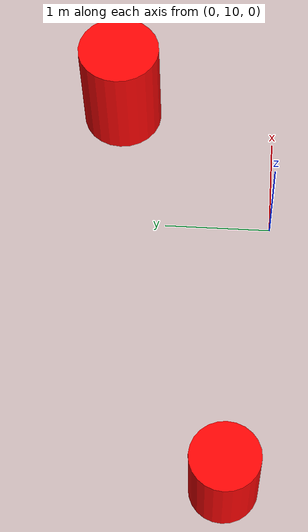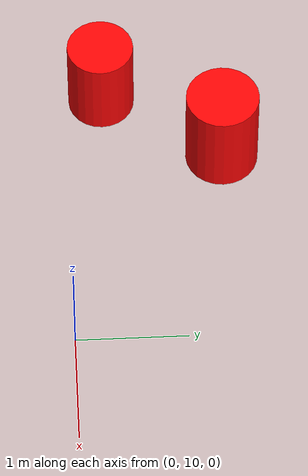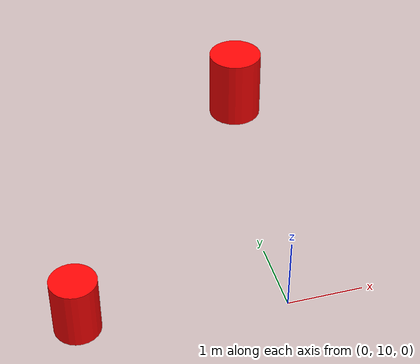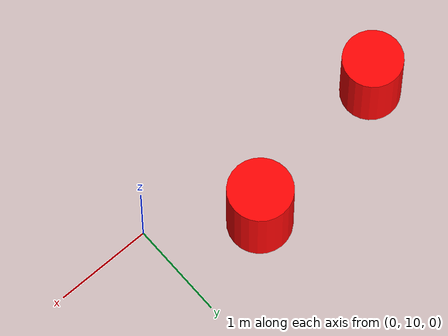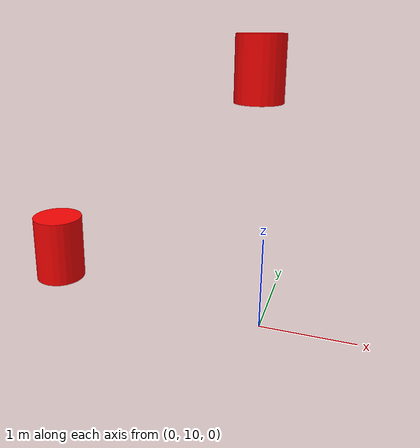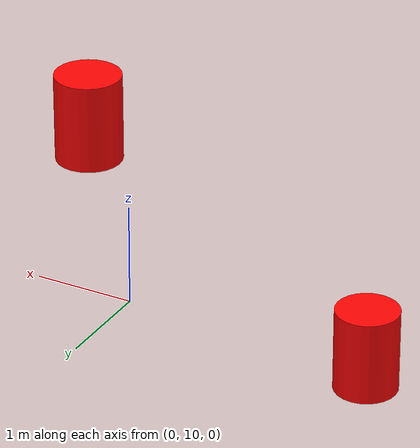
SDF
<sdf version="1.7">
 <world name="floor_3">
  <model name="moving_obstacle_2">
   <static>true</static>
   <pose>-2.62882442 10.3227333 0.4 0 0 0</pose>
   <link name="obstacle">
    <collision name="body_collision">
     <geometry><cylinder><radius>0.3</radius><length>0.8</length></cylinder></geometry>
     <max_contacts>40</max_contacts>
     <surface>
      <friction><ode><mu>2</mu><mu2>2</mu2></ode></friction>
      <contact><ode><kp>1e7</kp><kd>1000</kd><max_vel>0.1</max_vel><min_depth>0.001</min_depth></ode></contact>
     </surface>
    </collision>
    <visual name="body_visual">
     <geometry><cylinder><radius>0.3</radius><length>0.8</length></cylinder></geometry>
     <material>
      <ambient>1 0.015 0.015 1</ambient>
      <diffuse>1 0.015 0.015 1</diffuse>
      <emissive>0.25 0 0 1</emissive>
     </material>
    </visual>
   </link>
   <plugin name="path_motion" filename="libmultimap_obstacle_motion.so">
    <speed>0.65</speed>
    <start_delay>0.25</start_delay>
    <waypoints>
     <point>-2.62882442 10.3227333 0.4</point>
     <point>-2.66177924 10.2066091 0.4</point>
     <point>-2.69473405 10.0904848 0.4</point>
     <point>-2.72768886 9.97436061 0.4</point>
     <point>-2.76064367 9.85823639 0.4</point>
     <point>-2.79359848 9.74211216 0.4</point>
     <point>-2.8265533 9.62598794 0.4</point>
     <point>-2.85950811 9.50986371 0.4</point>
     <point>-2.89246292 9.39373949 0.4</point>
     <point>-2.92541773 9.27761526 0.4</point>
     <point>-2.95837254 9.16149104 0.4</point>
     <point>-2.99132735 9.04536681 0.4</point>
     <point>-3.02428217 8.92924259 0.4</point>
     <point>-3.05723698 8.81311836 0.4</point>
     <point>-3.09019179 8.69699413 0.4</point>
     <point>-3.1231466 8.58086991 0.4</point>
     <point>-3.15610141 8.46474568 0.4</point>
     <point>-3.18905623 8.34862146 0.4</point>
     <point>-3.22201104 8.23249723 0.4</point>
     <point>-3.25496585 8.11637301 0.4</point>
     <point>-3.28792066 8.00024878 0.4</point>
     <point>-3.32087547 7.88412456 0.4</point>
     <point>-3.35383029 7.76800033 0.4</point>
     <point>-3.3867851 7.65187611 0.4</point>
     <point>-3.41973991 7.53575188 0.4</point>
     <point>-3.45269472 7.41962766 0.4</point>
     <point>-3.48564953 7.30350343 0.4</point>
     <point>-3.51860434 7.18737921 0.4</point>
     <point>-3.55155916 7.07125498 0.4</point>
     <point>-3.58451397 6.95513076 0.4</point>
     <point>-3.61746878 6.83900653 0.4</point>
     <point>-3.65042359 6.7228823 0.4</point>
     <point>-3.6833784 6.60675808 0.4</point>
     <point>-3.71633322 6.49063385 0.4</point>
     <point>-3.74928803 6.37450963 0.4</point>
     <point>-3.78224284 6.2583854 0.4</point>
     <point>-3.81519765 6.14226118 0.4</point>
     <point>-3.84815246 6.02613695 0.4</point>
     <point>-3.88110728 5.91001273 0.4</point>
     <point>-3.91406209 5.7938885 0.4</point>
    </waypoints>
   </plugin>
  </model>
  <model name="moving_obstacle_8">
   <static>true</static>
   <pose>-0.353591471 11.2699913 2.58947368 0 0 0</pose>
   <link name="obstacle">
    <collision name="body_collision">
     <geometry><cylinder><radius>0.3</radius><length>0.8</length></cylinder></geometry>
     <max_contacts>40</max_contacts>
     <surface>
      <friction><ode><mu>2</mu><mu2>2</mu2></ode></friction>
      <contact><ode><kp>1e7</kp><kd>1000</kd><max_vel>0.1</max_vel><min_depth>0.001</min_depth></ode></contact>
     </surface>
    </collision>
    <visual name="body_visual">
     <geometry><cylinder><radius>0.3</radius><length>0.8</length></cylinder></geometry>
     <material>
      <ambient>1 0.015 0.015 1</ambient>
      <diffuse>1 0.015 0.015 1</diffuse>
      <emissive>0.25 0 0 1</emissive>
     </material>
    </visual>
   </link>
   <plugin name="path_motion" filename="libmultimap_obstacle_motion.so">
    <speed>0.9</speed>
    <start_delay>0.75</start_delay>
    <waypoints>
     <point>-0.353591471 11.2699913 2.58947368</point>
     <point>-0.419024626 11.2276012 2.58947368</point>
     <point>-0.484457782 11.1852111 2.58947368</point>
     <point>-0.549890937 11.142821 2.58947368</point>
     <point>-0.615324093 11.1004308 2.58947368</point>
     <point>-0.680757249 11.0580407 2.58947368</point>
     <point>-0.746190404 11.0156506 2.58947368</point>
     <point>-0.81162356 10.9732604 2.58947368</point>
     <point>-0.877056715 10.9308703 2.58947368</point>
     <point>-0.942489871 10.8884802 2.58947368</point>
     <point>-1.00792303 10.8460901 2.58947368</point>
     <point>-1.07335618 10.8036999 2.58947368</point>
     <point>-1.13878934 10.7613098 2.58947368</point>
     <point>-1.20422249 10.7189197 2.58947368</point>
     <point>-1.26965565 10.6765296 2.58947368</point>
     <point>-1.3350888 10.6341394 2.58947368</point>
     <point>-1.40052196 10.5917493 2.58947368</point>
     <point>-1.46595511 10.5493592 2.58947368</point>
     <point>-1.53138827 10.5069691 2.58947368</point>
     <point>-1.59682143 10.4645789 2.58947368</point>
     <point>-1.66225458 10.4221888 2.58947368</point>
     <point>-1.72768774 10.3797987 2.58947368</point>
     <point>-1.79312089 10.3374085 2.58947368</point>
     <point>-1.85855405 10.2950184 2.58947368</point>
     <point>-1.9239872 10.2526283 2.58947368</point>
     <point>-1.98942036 10.2102382 2.58947368</point>
     <point>-2.05485351 10.167848 2.58947368</point>
     <point>-2.12028667 10.1254579 2.58947368</point>
     <point>-2.18571983 10.0830678 2.58947368</point>
     <point>-2.25115298 10.0406777 2.58947368</point>
     <point>-2.31658614 9.99828753 2.58947368</point>
     <point>-2.38201929 9.95589741 2.58947368</point>
     <point>-2.44745245 9.91350728 2.58947368</point>
     <point>-2.5128856 9.87111715 2.58947368</point>
     <point>-2.57831876 9.82872703 2.58947368</point>
     <point>-2.64375191 9.7863369 2.58947368</point>
     <point>-2.70918507 9.74394677 2.58947368</point>
     <point>-2.77461822 9.70155664 2.58947368</point>
     <point>-2.84005138 9.65916652 2.58947368</point>
     <point>-2.90548454 9.61677639 2.58947368</point>
    </waypoints>
   </plugin>
  </model>
 </world>
</sdf>
